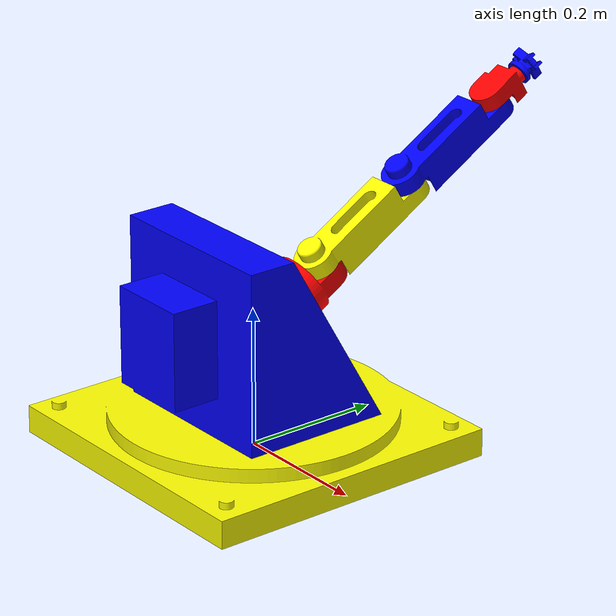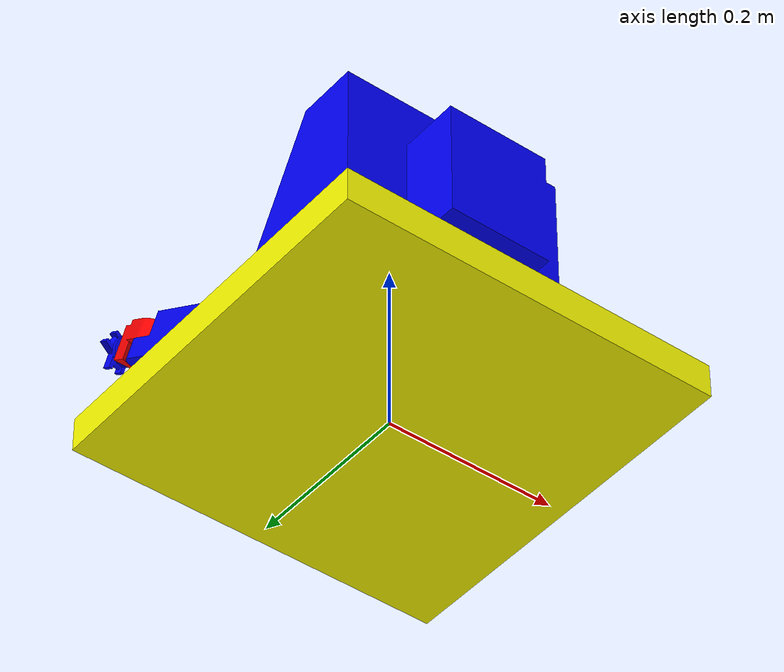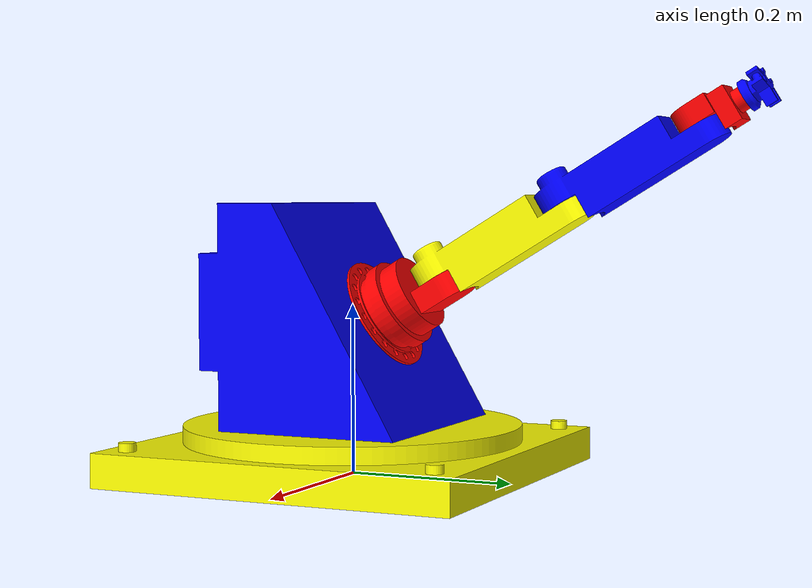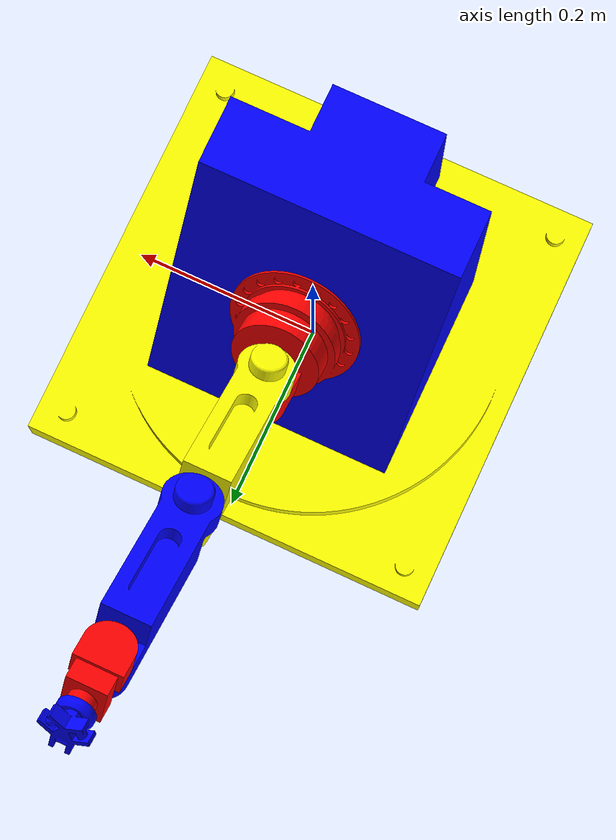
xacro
<?xml version="1.0"?>

<robot name="robot_FR" xmlns:xacro="http://www.ros.org/wiki/xacro">

  <!-- BGN INCLUDE -->
  <xacro:include filename="$(find modelo_robot)/urdf/robot_parameter.xacro" />
  <!-- END INCLUDE -->

  <!-- BGN Color of materials -->
  <material name="yellow">
    <color rgba="1 1 0 1"/>
  </material>
  <material name="blue">
    <color rgba="0 0 1 1"/>
  </material>
  <material name="red">
    <color rgba="1 0 0 1"/>
  </material>
  <!-- END Color of materials -->

  <!-- BGN VARIABLES -->
  <xacro:macro name="FR_robot" params="link_00:=l0
    link_01:=l1
    link_02:=l2
    link_03:=l3
    link_04:=l4
    link_05:=l5
    link_06:=l6
    joint_00:=j0
    joint_01:=j1
    joint_02:=j2
    joint_03:=j3
    joint_04:=j4
    joint_05:=j5" />
  <xacro:property name="link_00_height" value="0.06" />
  <xacro:property name="link_04_length" value="-0.174" />
  <!-- END VARIABLES -->

  <!-- BGN EXPRESSIONS -->

  <!-- END EXPRESSIONS -->

  <!-- BGN ROBOT DESCRIPTION -->
  <link name="${link_00}">
    <inertial>
      <origin xyz="0 0 0.0273" rpy="0 0 0"/>
      <mass value="50"/>
      <inertia ixx="1.203"  ixy="0"  ixz="0" iyy="1.203" iyz="0" izz="2.363" />
    </inertial>

    <visual>
      <origin xyz="0 0 0"  rpy="0 0 0" />
      <geometry>
        <mesh filename="package://modelo_robot/piezas_robot/BASE_FIJA.stl" scale = "0.001 0.001 0.001"/>
      </geometry>
      <material name="yellow" />
    </visual>

    <collision>
      <origin xyz="0 0 0" rpy="0 0 0"/>
      <geometry>
        <mesh filename="package://modelo_robot/piezas_robot/BASE_FIJA.stl" scale = "0.001 0.001 0.001"/>
      </geometry>
    </collision>
  </link>

  <joint name="${joint_00}" type="revolute">
    <parent link="${link_00}"/>
    <child link="${link_01}"/>
    <origin xyz="0 0 ${link_00_height}" rpy="0 0 0"/>
    <axis xyz="0 0 1" />
    <limit effort="300" velocity="0.1" lower="-3.14" upper="3.14"/>
  </joint>

  <link name="${link_01}">
    <inertial>
      <origin xyz="0 -0.045366 0.110111" rpy="0 0 0"/>
      <mass value="60"/>
      <inertia ixx="0.7331"  ixy="0"  ixz="0" iyy="0.8951" iyz="0.1388" izz="0.7853" />
    </inertial>

    <visual>
      <origin xyz="0 -0.02 0"  rpy="0 0 0" />
      <geometry>
        <mesh filename="package://modelo_robot/piezas_robot/BASE_MOVIL.stl" scale = "0.001 0.001 0.001"/>
      </geometry>
      <material name="blue" />
    </visual>

    <collision>
      <origin xyz="0 -0.02 0" rpy="0 0 0"/>
      <geometry>
        <mesh filename="package://modelo_robot/piezas_robot/BASE_MOVIL.stl" scale = "0.001 0.001 0.001"/>
      </geometry>
    </collision>
  </link>

  <joint name="${joint_01}" type="revolute">
    <parent link="${link_01}"/>
    <child link="${link_02}"/>
    <origin xyz="0 0.041 0.13"  rpy="0.541052 0 0" />
    <axis xyz="0 1 0" />
    <limit effort="300" velocity="0.1" lower="-3.14" upper="3.14"/>
  </joint>

  <link name="${link_02}">
    <inertial>
      <origin xyz="0 0.014446 0.068414" rpy="0.541052 0 0"/>
      <mass value="5.275"/>
      <inertia ixx="0.008116"  ixy="0"  ixz="0" iyy="0.006982" iyz="-0.000111" izz="0.008366" />
    </inertial>

    <visual>
      <origin xyz="0 0.048 0"  rpy="0 0 0" />
      <geometry>
        <mesh filename="package://modelo_robot/piezas_robot/SHOULDER_MOVE.stl" scale = "0.001 0.001 0.001"/>
      </geometry>
      <material name="red" />
    </visual>

    <collision>
      <origin xyz="0 0.048 0" rpy="0 0 0"/>
      <geometry>
        <mesh filename="package://modelo_robot/piezas_robot/SHOULDER_MOVE.stl" scale = "0.001 0.001 0.001"/>
      </geometry>
    </collision>
  </link>

  <joint name="${joint_02}" type="revolute">
    <parent link="${link_02}"/>
    <child link="${link_03}"/>
    <origin xyz="0 0.086 0.0046"  rpy="1.5708 0 0" />
    <axis xyz="0 1 0" />
    <limit effort="300" velocity="0.1" lower="-1" upper="1"/>
  </joint>

  <link name="${link_03}">
    <inertial>
      <origin xyz="0 0.099591 0.267629" rpy="1.5708 0 0"/>
      <mass value="3.232"/>
      <inertia ixx="0.01104"  ixy="0"  ixz="0" iyy="0.002555" iyz="-0.003257" izz="0.009774" />
    </inertial>

    <visual>
      <origin xyz="0 0 -0.083"  rpy="0 0 0" />
      <geometry>
        <mesh filename="package://modelo_robot/piezas_robot/PIEZA_01_arm.stl" scale = "0.001 0.001 0.001"/>
      </geometry>
      <material name="yellow" />
    </visual>

    <collision>
      <origin xyz="0 0 -0.083" rpy="0 0 0"/>
      <geometry>
        <mesh filename="package://modelo_robot/piezas_robot/PIEZA_01_arm.stl" scale = "0.001 0.001 0.001"/>
      </geometry>
    </collision>
  </link>

  <joint name="${joint_03}" type="revolute">
    <parent link="${link_03}"/>
    <child link="${link_04}"/>
    <origin xyz="0 -0.0054 ${link_04_length}"  rpy="0 0 0" />
    <axis xyz="0 1 0" />
    <limit effort="300" velocity="0.1" lower="-1" upper="1"/>
  </joint>

  <link name="${link_04}">
    <inertial>
      <origin xyz="0 0.3465 0.53" rpy="0 0 0"/>
      <mass value="3.232"/>
      <inertia ixx="0.01104"  ixy="0"  ixz="0" iyy="0.00255" iyz="-0.00326" izz="0.0098" />
    </inertial>

    <visual>
      <origin xyz="0 0 -0.083"  rpy="0 0 0" />
      <geometry>
        <mesh filename="package://modelo_robot/piezas_robot/PIEZA_02_arm.stl" scale = "0.001 0.001 0.001"/>
      </geometry>
      <material name="blue" />
    </visual>

    <collision>
      <origin xyz="0 0 -0.083" rpy="0 0 0"/>
      <geometry>
        <mesh filename="package://modelo_robot/piezas_robot/PIEZA_02_arm.stl" scale = "0.001 0.001 0.001"/>
      </geometry>
    </collision>
  </link>

  <joint name="${joint_04}" type="revolute">
    <parent link="${link_04}"/>
    <child link="${link_05}"/>
    <origin xyz="0 -0.008 ${link_04_length}"  rpy="-1.5708 0 -1.5708" />
    <axis xyz="1 0 0" />
    <limit effort="300" velocity="0.1" lower="-1.4" upper="1.4"/>
  </joint>

  <link name="${link_05}">
    <inertial>
      <origin xyz="0.0005 0.4463 0.5903" rpy="-1.5708 0 -1.5708"/>
      <mass value="0.729"/>
      <inertia ixx="0.000413"  ixy="0"  ixz="0" iyy="0.0001899" iyz="0" izz="0.0004294" />
    </inertial>

    <visual>
      <origin xyz="0 0.018 0"  rpy="0 0 0" />
      <geometry>
        <mesh filename="package://modelo_robot/piezas_robot/PIEZA_hands_1.stl" scale = "0.001 0.001 0.001"/>
      </geometry>
      <material name="red" />
    </visual>

    <collision>
      <origin xyz="0 0.018 0" rpy="0 0 0"/>
      <geometry>
        <mesh filename="package://modelo_robot/piezas_robot/PIEZA_hands_1.stl" scale = "0.001 0.001 0.001"/>
      </geometry>
    </collision>
  </link>

  <joint name="${joint_05}" type="revolute">
    <parent link="${link_05}"/>
    <child link="${link_06}"/>
    <origin xyz="0.0035 0.071 0"  rpy="0 0 0" />
    <axis xyz="0 1 0" />
    <limit effort="300" velocity="0.1" lower="-3.14" upper="3.14"/>
  </joint>

  <link name="${link_06}">
    <inertial>
      <origin xyz="-0.0039  0.4157  0.4365" rpy="0 0 0"/>
      <mass value="0.1623"/>
      <inertia ixx="0.000025"  ixy="0"  ixz="0" iyy="0.000028" iyz="0" izz="0.000026" />
    </inertial>

    <visual>
      <origin xyz="0 0 0"  rpy="0 0 0" />
      <geometry>
        <mesh filename="package://modelo_robot/piezas_robot/PIEZA_hands_0.stl" scale = "0.001 0.001 0.001"/>
      </geometry>
      <material name="blue" />
    </visual>

    <collision>
      <origin xyz="0 0 0" rpy="0 0 0"/>
      <geometry>
        <mesh filename="package://modelo_robot/piezas_robot/PIEZA_hands_0.stl" scale = "0.001 0.001 0.001"/>
      </geometry>
    </collision>
  </link>
  <!-- END ROBOT DESCRIPTION -->

</robot>

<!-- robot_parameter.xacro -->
<robot xmlns:xacro="http://www.ros.org/wiki/xacro">

  <xacro:property name = "link_00" value = "BASE_FIJA" />
  <xacro:property name = "link_01" value = "link_01" />
  <xacro:property name = "link_02" value = "link_02" />
  <xacro:property name = "link_03" value = "link_03" />
  <xacro:property name = "link_04" value = "link_04" />
  <xacro:property name = "link_05" value = "link_05" />
  <xacro:property name = "link_06" value = "link_06" />
  <xacro:property name = "joint_00" value = "q0" />
  <xacro:property name = "joint_01" value = "q1" />
  <xacro:property name = "joint_02" value = "q2" />
  <xacro:property name = "joint_03" value = "q3" />
  <xacro:property name = "joint_04" value = "q4" />
  <xacro:property name = "joint_05" value = "q5" />

</robot>
